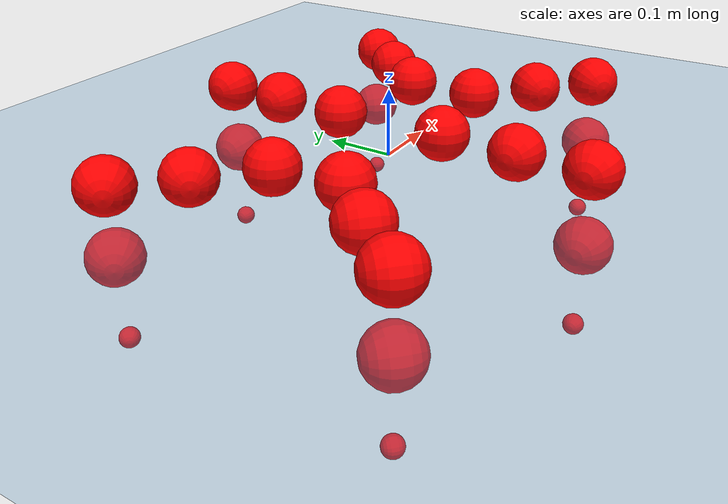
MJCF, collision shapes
<mujoco model="Golem">
  <compiler angle="radian" assetdir="assets" balanceinertia="true" inertiafromgeom="false"/>

  <option timestep="0.005" density="1.2" viscosity="2e-05"/>

  <size nkey="1"/>

  <visual>
    <quality shadowsize="8192"/>
    <map shadowclip="0.5"/>
  </visual>

  <default>
    <default class="/">
      <joint armature="0.01" damping="0.01" frictionloss="0.01"/>
      <geom contype="0" conaffinity="0" group="1" solref="-1000 -80"/>
      <site size="0.01 0.005 0.005" group="5"/>
      <general forcelimited="true" biastype="affine" gainprm="25" biasprm="0 -25 -0.5"/>
      <default class="visual">
        <geom type="mesh" group="2"/>
      </default>
      <default class="collision">
        <geom group="3"/>
      </default>
      <default class="foot">
        <geom size="0.01 0 0" condim="6" group="4" priority="1" solimp="0.015 1 0.01"/>
      </default>
      <default class="reward_collision_sphere">
        <geom group="5" rgba="1 0 0 1"/>
      </default>
    </default>
  </default>

  <asset>
    <texture type="skybox" colorspace="auto" name="//unnamed_texture_0" builtin="gradient" rgb1="0.95 0.95 0.95" rgb2="0.95 0.95 0.95" width="100" height="600"/>
    <texture type="2d" colorspace="auto" name="texplane" builtin="checker" rgb1="0.345 0.575 0.748" rgb2="0.345 0.575 0.748" markrgb="1 1 1" width="512" height="512"/>
    <material name="MatPlane" class="/" texture="texplane" texuniform="true" texrepeat="2 2" specular="0.9"/>
    <mesh name="body" class="/" file="body.stl" scale="0.001 0.001 0.001"/>
    <mesh name="coxa" class="/" file="coxa.stl" scale="0.001 0.001 0.001"/>
    <mesh name="femur" class="/" file="femur.stl" scale="0.001 0.001 0.001"/>
    <mesh name="tibia" class="/" file="tibia.stl" scale="0.001 0.001 0.001"/>
    <mesh name="tarsus" class="/" file="tarsus.stl" scale="0.001 0.001 0.001"/>
  </asset>

  <worldbody>
    <geom name="floor" class="/" size="100 100 0.125" type="plane" group="0" material="MatPlane"/>
    <light name="toplight_shadow" class="/" pos="0 0 5" dir="0.0990148 0.0990148 -0.990148" type="directional" ambient="0.04 0.04 0.04" diffuse="0.55 0.55 0.55" specular="0.12 0.12 0.12"/>
    <light name="toplight_fill" class="/" pos="0 0 5" dir="0.0990148 0.0990148 -0.990148" type="directional" castshadow="false" ambient="0.04 0.04 0.04" diffuse="0.3 0.3 0.3" specular="0.08 0.08 0.08"/>
    <body name="trunk" pos="-0.00241416 0.00244236 -0.00229431" quat="0.999999 -0.000326374 0.000472206 -0.000989332">
      <inertial pos="-0.00207888 0.00209824 -0.00757555" quat="1 -0.00067581 -0.000451703 0.000273965" mass="3.13168" diaginertia="0.0209084 0.0069645 0.00323848"/>
      <joint name="//unnamed_joint_0" type="free"/>
      <geom name="//unnamed_geom_1" class="/" pos="0 0 0.0520604" quat="1 0 0 0" type="mesh" rgba="0.9 0.9 0.9 1" mesh="body"/>
      <site name="imu" class="/" pos="0.164029 0.0119527 0.104357" size="0.0098143"/>
      <camera name="track" class="/" pos="0 -1.87926 0" quat="0.707107 0.707107 0 0" mode="trackcom"/>
      <camera name="ego_camera" class="/" pos="0.154858 0 0.0813444" quat="-0.5 -0.5 0.5 0.5"/>
      <body name="coxa_RR" pos="-0.213341 -0.0795074 0.0512627" quat="0.383065 -0.000276555 -6.08284e-05 -0.923721">
        <inertial pos="0.000701255 8.64495e-05 0.000849172" quat="0.999997 0.00111392 -0.000945325 -0.00176691" mass="0.184209" diaginertia="0.0238269 0.00729313 0.0036174"/>
        <joint name="coxa_joint_RR" class="/" pos="0 0 0" axis="-0.0240316 0.0219492 -0.99947" range="-3.1203 3.13719" armature="0.0108211" damping="0.00671385" frictionloss="0.00986536"/>
        <geom name="//unnamed_geom_2" class="/" type="mesh" rgba="0.2 0.2 0.2 1" mesh="coxa"/>
        <geom name="//unnamed_geom_3" class="reward_collision_sphere" size="0.0392572" pos="-0.0357365 0 0"/>
        <body name="femur_RR" pos="0.0671636 -0.000710076 3.30753e-05" quat="0.50015 -0.499885 0.499823 0.500142">
          <inertial pos="0.00238687 -0.000414744 0.000260232" quat="0.999996 0.00144278 -0.00221629 -0.00114416" mass="0.191251" diaginertia="0.0235374 0.00766916 0.00372887"/>
          <joint name="femur_joint_RR" class="/" pos="0 0 0" axis="-0.018951 -0.00284773 -0.999816" range="-3.13476 3.17534" armature="0.00991486" damping="0.00157132" frictionloss="0.0102835"/>
          <geom name="//unnamed_geom_4" class="/" type="mesh" rgba="0.9 0.9 0.9 1" mesh="femur"/>
          <geom name="//unnamed_geom_5" class="reward_collision_sphere" size="0.0392572"/>
          <body name="tibia_RR" pos="-1.01782e-05 -0.102169 0.00629479" quat="-3.33812e-06 1 3.62124e-06 -6.04096e-06">
            <inertial pos="-0.0016718 0.00517961 0.00141231" quat="0.999649 -0.0135692 -0.0115745 0.0195811" mass="0.189478" diaginertia="0.0227632 0.00728731 0.00363255"/>
            <joint name="tibia_joint_RR" class="/" pos="0 0 0" axis="-0.00524129 0.00161843 0.999985" range="-3.1613 3.09365" armature="0.00965748" damping="0.00917184" frictionloss="0.00908561"/>
            <geom name="//unnamed_geom_6" class="/" type="mesh" rgba="0.2 0.2 0.2 1" mesh="tibia"/>
            <geom name="//unnamed_geom_7" class="reward_collision_sphere" size="0.0392572"/>
            <body name="tarsus_RR" pos="0.104284 0.00552421 -8.31813e-05" quat="1 -5.03722e-05 -7.1848e-06 -3.12622e-06">
              <inertial pos="0.0740192 0.000899668 0.00126191" quat="0.50019 0.500551 0.485243 0.513612" mass="0.180154" diaginertia="0.0226724 0.00716546 0.00366815"/>
              <joint name="tarsus_joint_RR" class="/" pos="0 0 0" axis="-0.00735026 0.00519812 0.999959" range="-3.11817 3.09156" armature="0.00875807" damping="0.0193024" frictionloss="0.00863228"/>
              <geom name="//unnamed_geom_8" class="/" type="mesh" rgba="0.9 0.9 0.9 1" mesh="tarsus"/>
              <geom name="foot_1" class="foot" size="0.00991151" pos="0.133416 0 0" quat="0 -0.707107 0 0.707107"/>
              <geom name="//unnamed_geom_10" class="reward_collision_sphere" size="0.0392572"/>
              <geom name="//unnamed_geom_11" class="reward_collision_sphere" size="0.0147215" pos="0.128056 0 0"/>
              <site name="foot_1" class="foot" pos="0.133416 0 0" quat="0 -0.707107 0 0.707107" size="0.0098143"/>
            </body>
          </body>
        </body>
      </body>
      <body name="coxa_RM" pos="0.000433052 -0.124892 0.0553007" quat="0.705554 0.00243744 0.000204999 -0.708652">
        <inertial pos="-0.0014066 0.00037436 0.00335764" quat="0.999999 -0.000798777 0.00115224 0.000364505" mass="0.184755" diaginertia="0.0246234 0.0070971 0.00350536"/>
        <joint name="coxa_joint_RM" class="/" pos="0 0 0" axis="-0.00381988 -0.00862552 -0.999956" stiffness="0.0048067" range="-3.10463 3.1495" armature="0.00885336" damping="0.0174887" frictionloss="0.0105867"/>
        <geom name="//unnamed_geom_12" class="/" type="mesh" rgba="0.2 0.2 0.2 1" mesh="coxa"/>
        <geom name="//unnamed_geom_13" class="reward_collision_sphere" size="0.0392572" pos="-0.0357365 0 0"/>
        <body name="femur_RM" pos="0.0734108 0.0034246 -0.00408717" quat="0.500775 -0.500561 0.499189 0.499474">
          <inertial pos="-0.00509314 0.000363203 -0.000225181" quat="0.999961 0.00622186 -0.00388189 -0.00484119" mass="0.198245" diaginertia="0.0265331 0.00763934 0.00398716"/>
          <joint name="femur_joint_RM" class="/" pos="0 0 0" axis="0.00881765 0.000667338 -0.999961" range="-3.12429 3.22666" armature="0.0109627" damping="0.001948" frictionloss="0.00975218"/>
          <geom name="//unnamed_geom_14" class="/" type="mesh" rgba="0.9 0.9 0.9 1" mesh="femur"/>
          <geom name="//unnamed_geom_15" class="reward_collision_sphere" size="0.0392572"/>
          <body name="tibia_RM" pos="0.000414253 -0.104179 0.00168329" quat="0.000151449 1 0.000175288 -0.000146492">
            <inertial pos="0.000596415 -0.00633203 0.00191333" quat="0.999998 -0.00119866 -0.000790292 -0.00126159" mass="0.195227" diaginertia="0.0239471 0.00728865 0.0035109"/>
            <joint name="tibia_joint_RM" class="/" pos="0 0 0" axis="0.00514719 -0.00762299 0.999958" range="-3.12037 3.12423" armature="0.00884547" damping="0" frictionloss="0.00952681"/>
            <geom name="//unnamed_geom_16" class="/" type="mesh" rgba="0.2 0.2 0.2 1" mesh="tibia"/>
            <geom name="//unnamed_geom_17" class="reward_collision_sphere" size="0.0392572"/>
            <body name="tarsus_RM" pos="0.110819 -0.000345292 0.000840157" quat="1 0.000313635 0.000181002 -0.00014301">
              <inertial pos="0.0679749 -0.00149889 0.00229502" quat="0.499275 0.502765 0.501595 0.496341" mass="0.172951" diaginertia="0.0237998 0.00712273 0.0032617"/>
              <joint name="tarsus_joint_RM" class="/" pos="0 0 0" axis="-0.00972647 0.00491687 0.999941" range="-3.096 3.19661" armature="0.0102134" damping="0.010599" frictionloss="0.010892"/>
              <geom name="//unnamed_geom_18" class="/" type="mesh" rgba="0.9 0.9 0.9 1" mesh="tarsus"/>
              <geom name="foot_2" class="foot" size="0.00952175" pos="0.133416 0 0" quat="0 -0.707107 0 0.707107"/>
              <geom name="//unnamed_geom_20" class="reward_collision_sphere" size="0.0392572"/>
              <geom name="//unnamed_geom_21" class="reward_collision_sphere" size="0.0147215" pos="0.128056 0 0"/>
              <site name="foot_2" class="foot" pos="0.133416 0 0" quat="0 -0.707107 0 0.707107" size="0.0098143"/>
            </body>
          </body>
        </body>
      </body>
      <body name="coxa_RF" pos="0.212575 -0.0752802 0.0487006" quat="0.924022 -0.000783389 -0.000208395 -0.382338">
        <inertial pos="-0.00231868 0.0046051 -0.00214229" quat="0.999762 -0.00705385 -0.0105945 0.0176993" mass="0.199023" diaginertia="0.023998 0.00743201 0.00361242"/>
        <joint name="coxa_joint_RF" class="/" pos="0 0 0" axis="-0.0142808 -0.00684186 -0.999875" stiffness="0.0103713" range="-3.23764 3.14477" armature="0.0113921" damping="0.00979305" frictionloss="0.00954304"/>
        <geom name="//unnamed_geom_22" class="/" type="mesh" rgba="0.2 0.2 0.2 1" mesh="coxa"/>
        <geom name="//unnamed_geom_23" class="reward_collision_sphere" size="0.0392572" pos="-0.0357365 0 0"/>
        <body name="femur_RF" pos="0.068151 -0.000479274 0.00133132" quat="0.500238 -0.49978 0.499831 0.500151">
          <inertial pos="0.00177873 -0.00449161 0.00135651" quat="0.999945 -0.0104194 -0.000705031 0.000598795" mass="0.185547" diaginertia="0.0221492 0.00681229 0.00323836"/>
          <joint name="femur_joint_RF" class="/" pos="0 0 0" axis="0.00867734 0.00170653 -0.999961" range="-3.17447 3.12683" armature="0.00951514" damping="0.00199752" frictionloss="0.00951138"/>
          <geom name="//unnamed_geom_24" class="/" type="mesh" rgba="0.9 0.9 0.9 1" mesh="femur"/>
          <geom name="//unnamed_geom_25" class="reward_collision_sphere" size="0.0392572"/>
          <body name="tibia_RF" pos="-0.000146439 -0.101452 0.000671512" quat="7.81077e-05 1 -0.000141288 0.000116323">
            <inertial pos="-0.000526941 0.000143892 0.00581992" quat="0.999851 0.00256448 -0.000610268 -0.0170643" mass="0.188781" diaginertia="0.0227076 0.00751129 0.00336341"/>
            <joint name="tibia_joint_RF" class="/" pos="0 0 0" axis="-0.00331331 -0.00443939 0.999985" range="-3.154 3.14074" armature="0.0100193" damping="0.0169633" frictionloss="0.00978318"/>
            <geom name="//unnamed_geom_26" class="/" type="mesh" rgba="0.2 0.2 0.2 1" mesh="tibia"/>
            <geom name="//unnamed_geom_27" class="reward_collision_sphere" size="0.0392572"/>
            <body name="tarsus_RF" pos="0.104241 -0.000482774 0.00071157" quat="0.999999 -0.000355914 -0.000334041 -0.000917614">
              <inertial pos="0.0706801 0.00235462 0.00180024" quat="0.498504 0.498391 0.50262 0.500472" mass="0.189569" diaginertia="0.0232473 0.00764972 0.00378594"/>
              <joint name="tarsus_joint_RF" class="/" pos="0 0 0" axis="-0.00134671 -6.89113e-05 0.999999" stiffness="0.0288006" range="-3.1882 3.14006" armature="0.0112085" damping="0.0286749" frictionloss="0.0110161"/>
              <geom name="//unnamed_geom_28" class="/" type="mesh" rgba="0.9 0.9 0.9 1" mesh="tarsus"/>
              <geom name="foot_3" class="foot" size="0.0100322" pos="0.133416 0 0" quat="0 -0.707107 0 0.707107"/>
              <geom name="//unnamed_geom_30" class="reward_collision_sphere" size="0.0392572"/>
              <geom name="//unnamed_geom_31" class="reward_collision_sphere" size="0.0147215" pos="0.128056 0 0"/>
              <site name="foot_3" class="foot" pos="0.133416 0 0" quat="0 -0.707107 0 0.707107" size="0.0098143"/>
            </body>
          </body>
        </body>
      </body>
      <body name="coxa_LR" pos="-0.214231 0.0840082 0.045068" quat="0.383387 7.70847e-05 4.55948e-06 0.923588">
        <inertial pos="0.00173258 0.002266 0.00108578" quat="0.999946 0.00771466 0.00600011 0.00354209" mass="0.199006" diaginertia="0.022617 0.00764469 0.00391104"/>
        <joint name="coxa_joint_LR" class="/" pos="0 0 0" axis="-0.00461248 0.00370425 -0.999983" range="-3.1368 3.15544" armature="0.0103855" damping="0" frictionloss="0.0105031"/>
        <geom name="//unnamed_geom_32" class="/" type="mesh" rgba="0.2 0.2 0.2 1" mesh="coxa"/>
        <geom name="//unnamed_geom_33" class="reward_collision_sphere" size="0.0392572" pos="-0.0357365 0 0"/>
        <body name="femur_LR" pos="0.069965 0.00100614 -0.00198447" quat="0.499915 -0.498933 0.500601 0.500549">
          <inertial pos="0.00189986 0.00652996 0.00191178" quat="0.999998 -1.538e-05 -0.000506638 -0.00190935" mass="0.189055" diaginertia="0.0255882 0.0072245 0.00382514"/>
          <joint name="femur_joint_LR" class="/" pos="0 0 0" axis="0.00439723 0.00551454 0.999975" range="-3.21878 3.1544" armature="0.00882673" damping="0.0433863" frictionloss="0.00966642"/>
          <geom name="//unnamed_geom_34" class="/" type="mesh" rgba="0.9 0.9 0.9 1" mesh="femur"/>
          <geom name="//unnamed_geom_35" class="reward_collision_sphere" size="0.0392572"/>
          <body name="tibia_LR" pos="-0.00290621 -0.1015 0.00589955" quat="-6.43309e-06 1 1.74471e-06 1.91283e-05">
            <inertial pos="-0.000137255 0.00228945 0.000437583" quat="0.99985 0.00182597 0.0133077 0.0109602" mass="0.200338" diaginertia="0.0255221 0.00757818 0.00367338"/>
            <joint name="tibia_joint_LR" class="/" pos="0 0 0" axis="0.0103443 -0.00134581 -0.999946" stiffness="0.0177208" range="-3.13863 3.0557" armature="0.0107158" damping="0.000853021" frictionloss="0.0100058"/>
            <geom name="//unnamed_geom_36" class="/" type="mesh" rgba="0.2 0.2 0.2 1" mesh="tibia"/>
            <geom name="//unnamed_geom_37" class="reward_collision_sphere" size="0.0392572"/>
            <body name="tarsus_LR" pos="0.10572 0.00274019 0.00608325" quat="1 0.000365801 -0.000495924 -0.000582734">
              <inertial pos="0.0670447 0.00518838 0.00402034" quat="0.495488 0.499357 0.504241 0.500874" mass="0.189898" diaginertia="0.0242039 0.00725693 0.00371124"/>
              <joint name="tarsus_joint_LR" class="/" pos="0 0 0" axis="-0.0163275 -0.0118945 -0.999796" stiffness="0.0200007" range="-3.16172 3.14558" armature="0.0105251" damping="0.0228221" frictionloss="0.00999608"/>
              <geom name="//unnamed_geom_38" class="/" type="mesh" rgba="0.9 0.9 0.9 1" mesh="tarsus"/>
              <geom name="foot_4" class="foot" size="0.0075178" pos="0.133416 0 0" quat="0.707107 0 -0.707107 0"/>
              <geom name="//unnamed_geom_40" class="reward_collision_sphere" size="0.0392572"/>
              <geom name="//unnamed_geom_41" class="reward_collision_sphere" size="0.0147215" pos="0.128056 0 0"/>
              <site name="foot_4" class="foot" pos="0.133416 0 0" quat="0.707107 0 -0.707107 0" size="0.0098143"/>
            </body>
          </body>
        </body>
      </body>
      <body name="coxa_LM" pos="0.0057096 0.118058 0.051025" quat="0.707365 -0.000359992 0.000583146 0.706848">
        <inertial pos="-0.00128674 0.00160495 0.00173847" quat="0.999841 0.0139027 -0.00655381 0.00902962" mass="0.181585" diaginertia="0.0228389 0.00681478 0.00327764"/>
        <joint name="coxa_joint_LM" class="/" pos="0 0 0" axis="-0.0279351 -0.0117985 -0.99954" range="-3.12469 3.18577" armature="0.0106998" damping="0.00803852" frictionloss="0.00956385"/>
        <geom name="//unnamed_geom_42" class="/" type="mesh" rgba="0.2 0.2 0.2 1" mesh="coxa"/>
        <geom name="//unnamed_geom_43" class="reward_collision_sphere" size="0.0392572" pos="-0.0357365 0 0"/>
        <body name="femur_LM" pos="0.0736836 0.00152138 0.0022441" quat="0.499999 -0.500019 0.500005 0.499977">
          <inertial pos="-0.00156506 -0.00268761 -0.00233681" quat="0.999948 -0.00424134 0.00687331 0.00628607" mass="0.186452" diaginertia="0.0245465 0.00666496 0.00337938"/>
          <joint name="femur_joint_LM" class="/" pos="0 0 0" axis="-0.00269456 0.00445068 0.999986" stiffness="0.0101818" range="-3.0966 3.1765" armature="0.00845465" damping="0.00351161" frictionloss="0.0104643"/>
          <geom name="//unnamed_geom_44" class="/" type="mesh" rgba="0.9 0.9 0.9 1" mesh="femur"/>
          <geom name="//unnamed_geom_45" class="reward_collision_sphere" size="0.0392572"/>
          <body name="tibia_LM" pos="-0.000365581 -0.0976513 -0.00111658" quat="0.00106124 0.999999 -0.00085852 -0.000522275">
            <inertial pos="-0.000723188 0.000625467 0.00337966" quat="0.999803 -0.00299951 0.0193233 -0.00339229" mass="0.18018" diaginertia="0.0229529 0.00660412 0.00336024"/>
            <joint name="tibia_joint_LM" class="/" pos="0 0 0" axis="-0.000774733 0.00054159 -1" stiffness="0.0244015" range="-3.12912 3.13425" armature="0.0101893" damping="0.00840073" frictionloss="0.0111017"/>
            <geom name="//unnamed_geom_46" class="/" type="mesh" rgba="0.2 0.2 0.2 1" mesh="tibia"/>
            <geom name="//unnamed_geom_47" class="reward_collision_sphere" size="0.0392572"/>
            <body name="tarsus_LM" pos="0.106349 -0.00294945 0.000927972" quat="0.999998 -0.0012512 0.000584343 -0.00107971">
              <inertial pos="0.0716779 0.00120968 0.000192312" quat="0.495083 0.493464 0.517559 0.493476" mass="0.175899" diaginertia="0.0215807 0.00700532 0.0034793"/>
              <joint name="tarsus_joint_LM" class="/" pos="0 0 0" axis="-0.0210467 0.0198161 -0.999582" range="-3.09951 3.1035" armature="0.00894322" damping="0.0259442" frictionloss="0.00790268"/>
              <geom name="//unnamed_geom_48" class="/" type="mesh" rgba="0.9 0.9 0.9 1" mesh="tarsus"/>
              <geom name="foot_5" class="foot" size="0.00947495" pos="0.133416 0 0" quat="0.707107 0 -0.707107 0"/>
              <geom name="//unnamed_geom_50" class="reward_collision_sphere" size="0.0392572"/>
              <geom name="//unnamed_geom_51" class="reward_collision_sphere" size="0.0147215" pos="0.128056 0 0"/>
              <site name="foot_5" class="foot" pos="0.133416 0 0" quat="0.707107 0 -0.707107 0" size="0.0098143"/>
            </body>
          </body>
        </body>
      </body>
      <body name="coxa_LF" pos="0.207642 0.08382 0.0506481" quat="0.923552 -0.000764952 0.000457619 0.383472">
        <inertial pos="-0.000640087 -0.000655048 -0.00335064" quat="0.999954 0.00195121 -0.00936876 -0.000554382" mass="0.188048" diaginertia="0.0248526 0.006839 0.0035549"/>
        <joint name="coxa_joint_LF" class="/" pos="0 0 0" axis="-0.0109012 -0.00761701 -0.999912" range="-3.18743 3.15468" armature="0.0111908" damping="0.00579571" frictionloss="0.00669682"/>
        <geom name="//unnamed_geom_52" class="/" type="mesh" rgba="0.2 0.2 0.2 1" mesh="coxa"/>
        <geom name="//unnamed_geom_53" class="reward_collision_sphere" size="0.0392572" pos="-0.0357365 0 0"/>
        <body name="femur_LF" pos="0.073277 0.00296816 -0.00409363" quat="0.50008 -0.49926 0.500954 0.499706">
          <inertial pos="0.00601702 0.000355557 -0.00645905" quat="0.999962 0.00203741 -0.003332 0.00782011" mass="0.190131" diaginertia="0.0230479 0.00763686 0.0035815"/>
          <joint name="femur_joint_LF" class="/" pos="0 0 0" axis="-0.000358105 0.000697681 1" stiffness="0.00645779" range="-3.11839 3.11103" armature="0.00951453" damping="0.0107328" frictionloss="0.0109576"/>
          <geom name="//unnamed_geom_54" class="/" type="mesh" rgba="0.9 0.9 0.9 1" mesh="femur"/>
          <geom name="//unnamed_geom_55" class="reward_collision_sphere" size="0.0392572"/>
          <body name="tibia_LF" pos="0.00575241 -0.104522 0.00136381" quat="0.000216131 1 -1.26251e-05 6.27498e-05">
            <inertial pos="-0.000865 0.00591235 -0.00300844" quat="0.999999 -0.00169994 -4.12759e-05 0.000251903" mass="0.208217" diaginertia="0.0277293 0.00800872 0.00394312"/>
            <joint name="tibia_joint_LF" class="/" pos="0 0 0" axis="0.00197397 -0.00950148 -0.999953" range="-3.1423 3.1833" armature="0.00908928" damping="0.011972" frictionloss="0.0100343"/>
            <geom name="//unnamed_geom_56" class="/" type="mesh" rgba="0.2 0.2 0.2 1" mesh="tibia"/>
            <geom name="//unnamed_geom_57" class="reward_collision_sphere" size="0.0392572"/>
            <body name="tarsus_LF" pos="0.10865 0.00199148 -0.00529007" quat="0.999999 -0.000403723 -0.000693676 0.000867475">
              <inertial pos="0.0742922 0.000140914 -0.00264025" quat="0.501253 0.496876 0.502328 0.499526" mass="0.208755" diaginertia="0.0262451 0.00812768 0.00387809"/>
              <joint name="tarsus_joint_LF" class="/" pos="0 0 0" axis="-0.0060193 0.00285501 -0.999978" stiffness="1.1147e-05" range="-3.09364 3.15188" armature="0.00853535" damping="0.029065" frictionloss="0.0125605"/>
              <geom name="//unnamed_geom_58" class="/" type="mesh" rgba="0.9 0.9 0.9 1" mesh="tarsus"/>
              <geom name="foot_6" class="foot" size="0.0104239" pos="0.133416 0 0" quat="0.707107 0 -0.707107 0"/>
              <geom name="//unnamed_geom_60" class="reward_collision_sphere" size="0.0392572"/>
              <geom name="//unnamed_geom_61" class="reward_collision_sphere" size="0.0147215" pos="0.128056 0 0"/>
              <site name="foot_6" class="foot" pos="0.133416 0 0" quat="0.707107 0 -0.707107 0" size="0.0098143"/>
            </body>
          </body>
        </body>
      </body>
    </body>
  </worldbody>

  <contact>
    <pair class="/" geom1="floor" geom2="foot_1" name="//unnamed_contact_0"/>
    <pair class="/" geom1="floor" geom2="foot_2" name="//unnamed_contact_1"/>
    <pair class="/" geom1="floor" geom2="foot_3" name="//unnamed_contact_2"/>
    <pair class="/" geom1="floor" geom2="foot_4" name="//unnamed_contact_3"/>
    <pair class="/" geom1="floor" geom2="foot_5" name="//unnamed_contact_4"/>
    <pair class="/" geom1="floor" geom2="foot_6" name="//unnamed_contact_5"/>
  </contact>

  <actuator>
    <general name="coxa_joint_RR" class="/" joint="coxa_joint_RR" forcerange="-6.71995 6.71995" gainprm="22.1406" biasprm="0 -22.1406 -0.465401"/>
    <general name="femur_joint_RR" class="/" joint="femur_joint_RR" forcerange="-6.63071 6.63071" gainprm="22.1406" biasprm="0 -22.1406 -0.465401"/>
    <general name="tibia_joint_RR" class="/" joint="tibia_joint_RR" forcerange="-6.60261 6.60261" gainprm="22.1406" biasprm="0 -22.1406 -0.465401"/>
    <general name="tarsus_joint_RR" class="/" joint="tarsus_joint_RR" forcerange="-6.1886 6.1886" gainprm="22.1406" biasprm="0 -22.1406 -0.465401"/>
    <general name="coxa_joint_RM" class="/" joint="coxa_joint_RM" forcerange="-7.71939 7.71939" gainprm="22.1406" biasprm="0 -22.1406 -0.465401"/>
    <general name="femur_joint_RM" class="/" joint="femur_joint_RM" forcerange="-7.13703 7.13703" gainprm="22.1406" biasprm="0 -22.1406 -0.465401"/>
    <general name="tibia_joint_RM" class="/" joint="tibia_joint_RM" forcerange="-7.00439 7.00439" gainprm="22.1406" biasprm="0 -22.1406 -0.465401"/>
    <general name="tarsus_joint_RM" class="/" joint="tarsus_joint_RM" forcerange="-5.7714 5.7714" gainprm="22.1406" biasprm="0 -22.1406 -0.465401"/>
    <general name="coxa_joint_RF" class="/" joint="coxa_joint_RF" forcerange="-7.20212 7.20212" gainprm="22.1406" biasprm="0 -22.1406 -0.465401"/>
    <general name="femur_joint_RF" class="/" joint="femur_joint_RF" forcerange="-8.41418 8.41418" gainprm="22.1406" biasprm="0 -22.1406 -0.465401"/>
    <general name="tibia_joint_RF" class="/" joint="tibia_joint_RF" forcerange="-6.93441 6.93441" gainprm="22.1406" biasprm="0 -22.1406 -0.465401"/>
    <general name="tarsus_joint_RF" class="/" joint="tarsus_joint_RF" forcerange="-7.5253 7.5253" gainprm="22.1406" biasprm="0 -22.1406 -0.465401"/>
    <general name="coxa_joint_LR" class="/" joint="coxa_joint_LR" forcerange="-7.26227 7.26227" gainprm="22.1406" biasprm="0 -22.1406 -0.465401"/>
    <general name="femur_joint_LR" class="/" joint="femur_joint_LR" forcerange="-7.40053 7.40053" gainprm="22.1406" biasprm="0 -22.1406 -0.465401"/>
    <general name="tibia_joint_LR" class="/" joint="tibia_joint_LR" forcerange="-7.22747 7.22747" gainprm="22.1406" biasprm="0 -22.1406 -0.465401"/>
    <general name="tarsus_joint_LR" class="/" joint="tarsus_joint_LR" forcerange="-7.27835 7.27835" gainprm="22.1406" biasprm="0 -22.1406 -0.465401"/>
    <general name="coxa_joint_LM" class="/" joint="coxa_joint_LM" forcerange="-6.51053 6.51053" gainprm="22.1406" biasprm="0 -22.1406 -0.465401"/>
    <general name="femur_joint_LM" class="/" joint="femur_joint_LM" forcerange="-7.39015 7.39015" gainprm="22.1406" biasprm="0 -22.1406 -0.465401"/>
    <general name="tibia_joint_LM" class="/" joint="tibia_joint_LM" forcerange="-6.77358 6.77358" gainprm="22.1406" biasprm="0 -22.1406 -0.465401"/>
    <general name="tarsus_joint_LM" class="/" joint="tarsus_joint_LM" forcerange="-6.50964 6.50964" gainprm="22.1406" biasprm="0 -22.1406 -0.465401"/>
    <general name="coxa_joint_LF" class="/" joint="coxa_joint_LF" forcerange="-8.0994 8.0994" gainprm="22.1406" biasprm="0 -22.1406 -0.465401"/>
    <general name="femur_joint_LF" class="/" joint="femur_joint_LF" forcerange="-7.26716 7.26716" gainprm="22.1406" biasprm="0 -22.1406 -0.465401"/>
    <general name="tibia_joint_LF" class="/" joint="tibia_joint_LF" forcerange="-7.07704 7.07704" gainprm="22.1406" biasprm="0 -22.1406 -0.465401"/>
    <general name="tarsus_joint_LF" class="/" joint="tarsus_joint_LF" forcerange="-6.71484 6.71484" gainprm="22.1406" biasprm="0 -22.1406 -0.465401"/>
  </actuator>

  <sensor>
    <gyro site="imu" name="imu_angular_velocity"/>
    <velocimeter site="imu" name="imu_linear_velocity"/>
    <framelinvel objtype="site" objname="foot_1" name="foot_1_global_linear_velocity"/>
    <framelinvel objtype="site" objname="foot_2" name="foot_2_global_linear_velocity"/>
    <framelinvel objtype="site" objname="foot_3" name="foot_3_global_linear_velocity"/>
    <framelinvel objtype="site" objname="foot_4" name="foot_4_global_linear_velocity"/>
    <framelinvel objtype="site" objname="foot_5" name="foot_5_global_linear_velocity"/>
    <framelinvel objtype="site" objname="foot_6" name="foot_6_global_linear_velocity"/>
  </sensor>

  <keyframe>
    <key name="home" qpos="0 0 0.1457 1 0 0 0 0 0 0 0 0 0 0 0 0 0 0 0 0 0 0 0 0 0 0 0 0 0 0 0"/>
  </keyframe>
</mujoco>
